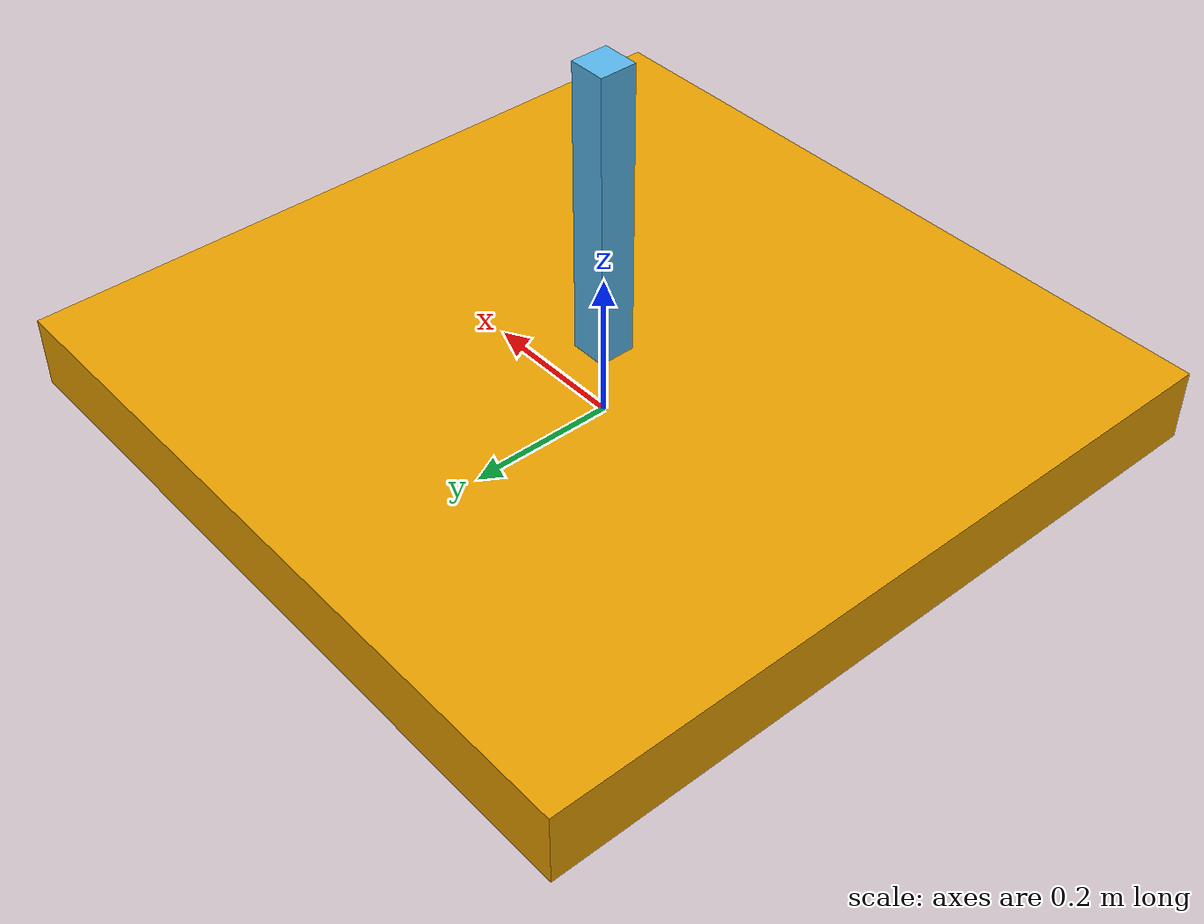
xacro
<robot name="pendulum_r" xmlns:xacro="http://wiki.ros.org/xacro">

    <xacro:include filename="macros.urdf.xacro" />

    <xacro:make_pendulum_links />

    <gazebo reference="body_to_head">
        <disableFixedJointLumping>true</disableFixedJointLumping>
        <preserveFixedJoint>true</preserveFixedJoint>
    </gazebo>

    <gazebo>
        <plugin name="gazebo_ros_relative_force" filename="libgazebo_ros_relative_force.so">
            <bodyName>head</bodyName>
            <robotNamespace>pendulum_r</robotNamespace>
            <topicName>wrench</topicName>
        </plugin>
    </gazebo>

</robot>

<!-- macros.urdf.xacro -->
<robot xmlns:xacro="http://wiki.ros.org/xacro">

    <!-- macros -->

    <xacro:macro name="make_box_link" params="name mass size_x size_y size_z">
        <link name="${name}">
            <inertial>
                <origin xyz="0 0 ${size_z / 2}" />
                <mass value="${mass}" />
                <inertia ixx="${mass * (size_y * size_y + size_z * size_z) / 12}" ixy="0" ixz="0"
                         iyy="${mass * (size_z * size_z + size_x * size_x) / 12}" iyz="0"
                         izz="${mass * (size_x * size_x + size_y * size_y) / 12}" />
            </inertial>
            <visual>
                <origin xyz="0 0 ${size_z / 2}" />
                <geometry>
                    <box size="${size_x} ${size_y} ${size_z}" />
                </geometry>
            </visual>
        </link>
    </xacro:macro>

    <xacro:macro name="make_pendulum_links">
        <xacro:make_box_link name="base" mass="100." size_x="1." size_y="1." size_z="0.1" />

        <joint name="base_to_body" type="continuous">
            <origin xyz="0 0 0.5" rpy="3.1415 0 0" />
            <parent link="base" />
            <child link="body" />
        </joint>

        <xacro:make_box_link name="body" mass="1." size_x="0.05" size_y="0.05" size_z="0.5" />

        <joint name="body_to_head" type="fixed">
            <origin xyz="0 0 0.5" rpy="0 0 0" />
            <parent link="body" />
            <child link="head" />
        </joint>

        <xacro:make_box_link name="head" mass="1." size_x="0.2" size_y="0.2" size_z="0.2" />
    </xacro:macro>

</robot>
